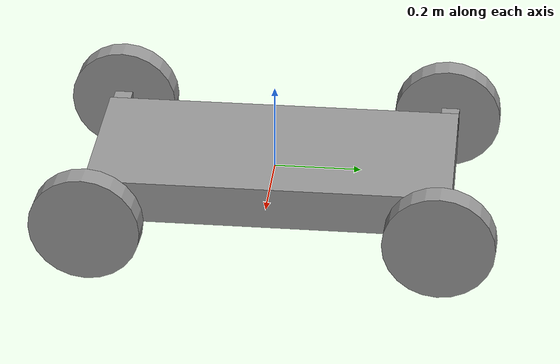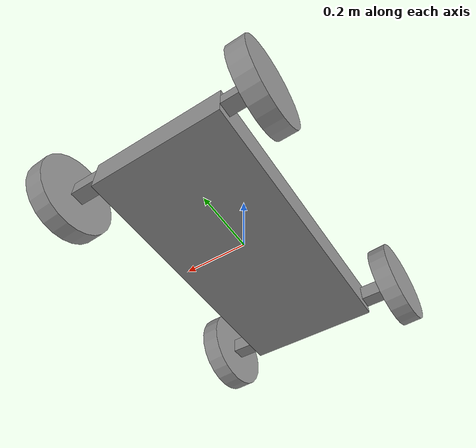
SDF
<?xml version='1.0'?>
<sdf version='1.6'>
  <model name='little_car_0'>
    <link name='link_0'>
      <pose frame=''>-0.001099 0.000791 0.00089 0 -0 0</pose>
      <inertial>
        <mass>0.0325049</mass>
        <inertia>
          <ixx>0.00188518</ixx>
          <ixy>0</ixy>
          <ixz>0</ixz>
          <iyy>0.000459472</iyy>
          <iyz>0</iyz>
          <izz>0.00229248</izz>
        </inertia>
        <pose frame=''>0 0 0 0 -0 0</pose>
      </inertial>
      <self_collide>0</self_collide>
      <kinematic>0</kinematic>
      <visual name='visual'>
        <pose frame=''>0 0 0 0 -0 0</pose>
        <geometry>
          <box>
            <size>0.399994 0.828452 0.098134</size>
          </box>
        </geometry>
        <material>
          <lighting>1</lighting>
          <script>
            <uri>file://media/materials/scripts/gazebo.material</uri>
            <name>Gazebo/Grey</name>
          </script>
          <shader type='pixel'/>
          <ambient>0.3 0.3 0.3 1</ambient>
          <diffuse>0.7 0.7 0.7 1</diffuse>
          <specular>0.01 0.01 0.01 1</specular>
          <emissive>0 0 0 1</emissive>
        </material>
        <transparency>0</transparency>
        <cast_shadows>1</cast_shadows>
      </visual>
      <collision name='collision'>
        <laser_retro>0</laser_retro>
        <max_contacts>10</max_contacts>
        <pose frame=''>0 0 0 0 -0 0</pose>
        <geometry>
          <box>
            <size>0.399994 0.828452 0.098134</size>
          </box>
        </geometry>
        <surface>
          <friction>
            <ode>
              <mu>1</mu>
              <mu2>1</mu2>
              <fdir1>0 0 0</fdir1>
              <slip1>0</slip1>
              <slip2>0</slip2>
            </ode>
            <torsional>
              <coefficient>1</coefficient>
              <patch_radius>0</patch_radius>
              <surface_radius>0</surface_radius>
              <use_patch_radius>1</use_patch_radius>
              <ode>
                <slip>0</slip>
              </ode>
            </torsional>
          </friction>
          <bounce>
            <restitution_coefficient>0</restitution_coefficient>
            <threshold>1e+06</threshold>
          </bounce>
          <contact>
            <collide_without_contact>0</collide_without_contact>
            <collide_without_contact_bitmask>1</collide_without_contact_bitmask>
            <collide_bitmask>1</collide_bitmask>
            <ode>
              <soft_cfm>0</soft_cfm>
              <soft_erp>0.2</soft_erp>
              <kp>1e+13</kp>
              <kd>1</kd>
              <max_vel>0.01</max_vel>
              <min_depth>0</min_depth>
            </ode>
            <bullet>
              <split_impulse>1</split_impulse>
              <split_impulse_penetration_threshold>-0.01</split_impulse_penetration_threshold>
              <soft_cfm>0</soft_cfm>
              <soft_erp>0.2</soft_erp>
              <kp>1e+13</kp>
              <kd>1</kd>
            </bullet>
          </contact>
        </surface>
      </collision>
    </link>
    <link name='link_0_clone'>
      <pose frame=''>-0.240125 0.393915 0.00089 0 -0 0</pose>
      <inertial>
        <mass>0.000135621</mass>
        <inertia>
          <ixx>3.93307e-08</ixx>
          <ixy>0</ixy>
          <ixz>0</ixz>
          <iyy>8.80606e-08</iyy>
          <iyz>0</iyz>
          <izz>8.89918e-08</izz>
        </inertia>
        <pose frame=''>0 0 0 0 -0 0</pose>
      </inertial>
      <self_collide>0</self_collide>
      <kinematic>0</kinematic>
      <visual name='visual'>
        <pose frame=''>0 0 0 0 -0 0</pose>
        <geometry>
          <box>
            <size>0.078057 0.042205 0.041217</size>
          </box>
        </geometry>
        <material>
          <lighting>1</lighting>
          <script>
            <uri>file://media/materials/scripts/gazebo.material</uri>
            <name>Gazebo/Grey</name>
          </script>
          <shader type='pixel'/>
          <ambient>0.3 0.3 0.3 1</ambient>
          <diffuse>0.7 0.7 0.7 1</diffuse>
          <specular>0.01 0.01 0.01 1</specular>
          <emissive>0 0 0 1</emissive>
        </material>
        <transparency>0</transparency>
        <cast_shadows>1</cast_shadows>
      </visual>
      <collision name='collision'>
        <laser_retro>0</laser_retro>
        <max_contacts>10</max_contacts>
        <pose frame=''>0 0 0 0 -0 0</pose>
        <geometry>
          <box>
            <size>0.078057 0.042205 0.041217</size>
          </box>
        </geometry>
        <surface>
          <friction>
            <ode>
              <mu>1</mu>
              <mu2>1</mu2>
              <fdir1>0 0 0</fdir1>
              <slip1>0</slip1>
              <slip2>0</slip2>
            </ode>
            <torsional>
              <coefficient>1</coefficient>
              <patch_radius>0</patch_radius>
              <surface_radius>0</surface_radius>
              <use_patch_radius>1</use_patch_radius>
              <ode>
                <slip>0</slip>
              </ode>
            </torsional>
          </friction>
          <bounce>
            <restitution_coefficient>0</restitution_coefficient>
            <threshold>1e+06</threshold>
          </bounce>
          <contact>
            <collide_without_contact>0</collide_without_contact>
            <collide_without_contact_bitmask>1</collide_without_contact_bitmask>
            <collide_bitmask>1</collide_bitmask>
            <ode>
              <soft_cfm>0</soft_cfm>
              <soft_erp>0.2</soft_erp>
              <kp>1e+13</kp>
              <kd>1</kd>
              <max_vel>0.01</max_vel>
              <min_depth>0</min_depth>
            </ode>
            <bullet>
              <split_impulse>1</split_impulse>
              <split_impulse_penetration_threshold>-0.01</split_impulse_penetration_threshold>
              <soft_cfm>0</soft_cfm>
              <soft_erp>0.2</soft_erp>
              <kp>1e+13</kp>
              <kd>1</kd>
            </bullet>
          </contact>
        </surface>
      </collision>
    </link>
    <link name='link_0_clone_clone_0'>
      <pose frame=''>-0.240124 -0.392333 0.00089 0 -0 0</pose>
      <inertial>
        <mass>0.000158882</mass>
        <inertia>
          <ixx>5.44496e-08</ixx>
          <ixy>0</ixy>
          <ixz>0</ixz>
          <iyy>1.11536e-07</iyy>
          <iyz>0</iyz>
          <izz>1.04255e-07</izz>
        </inertia>
        <pose frame=''>0 0 0 0 -0 0</pose>
      </inertial>
      <self_collide>0</self_collide>
      <kinematic>0</kinematic>
      <visual name='visual'>
        <pose frame=''>0 0 0 0 -0 0</pose>
        <geometry>
          <box>
            <size>0.078057 0.042205 0.048282</size>
          </box>
        </geometry>
        <material>
          <lighting>1</lighting>
          <script>
            <uri>file://media/materials/scripts/gazebo.material</uri>
            <name>Gazebo/Grey</name>
          </script>
          <shader type='pixel'/>
          <ambient>0.3 0.3 0.3 1</ambient>
          <diffuse>0.7 0.7 0.7 1</diffuse>
          <specular>0.01 0.01 0.01 1</specular>
          <emissive>0 0 0 1</emissive>
        </material>
        <transparency>0</transparency>
        <cast_shadows>1</cast_shadows>
      </visual>
      <collision name='collision'>
        <laser_retro>0</laser_retro>
        <max_contacts>10</max_contacts>
        <pose frame=''>0 0 0 0 -0 0</pose>
        <geometry>
          <box>
            <size>0.078057 0.042205 0.048282</size>
          </box>
        </geometry>
        <surface>
          <friction>
            <ode>
              <mu>1</mu>
              <mu2>1</mu2>
              <fdir1>0 0 0</fdir1>
              <slip1>0</slip1>
              <slip2>0</slip2>
            </ode>
            <torsional>
              <coefficient>1</coefficient>
              <patch_radius>0</patch_radius>
              <surface_radius>0</surface_radius>
              <use_patch_radius>1</use_patch_radius>
              <ode>
                <slip>0</slip>
              </ode>
            </torsional>
          </friction>
          <bounce>
            <restitution_coefficient>0</restitution_coefficient>
            <threshold>1e+06</threshold>
          </bounce>
          <contact>
            <collide_without_contact>0</collide_without_contact>
            <collide_without_contact_bitmask>1</collide_without_contact_bitmask>
            <collide_bitmask>1</collide_bitmask>
            <ode>
              <soft_cfm>0</soft_cfm>
              <soft_erp>0.2</soft_erp>
              <kp>1e+13</kp>
              <kd>1</kd>
              <max_vel>0.01</max_vel>
              <min_depth>0</min_depth>
            </ode>
            <bullet>
              <split_impulse>1</split_impulse>
              <split_impulse_penetration_threshold>-0.01</split_impulse_penetration_threshold>
              <soft_cfm>0</soft_cfm>
              <soft_erp>0.2</soft_erp>
              <kp>1e+13</kp>
              <kd>1</kd>
            </bullet>
          </contact>
        </surface>
      </collision>
    </link>
    <link name='link_0_clone_clone_0_clone'>
      <pose frame=''>0.237926 0.393914 0.00089 0 -0 0</pose>
      <inertial>
        <mass>0.000158882</mass>
        <inertia>
          <ixx>5.44496e-08</ixx>
          <ixy>0</ixy>
          <ixz>0</ixz>
          <iyy>1.11536e-07</iyy>
          <iyz>0</iyz>
          <izz>1.04255e-07</izz>
        </inertia>
        <pose frame=''>0 0 0 0 -0 0</pose>
      </inertial>
      <self_collide>0</self_collide>
      <kinematic>0</kinematic>
      <visual name='visual'>
        <pose frame=''>0 0 0 0 -0 0</pose>
        <geometry>
          <box>
            <size>0.078057 0.042205 0.048282</size>
          </box>
        </geometry>
        <material>
          <lighting>1</lighting>
          <script>
            <uri>file://media/materials/scripts/gazebo.material</uri>
            <name>Gazebo/Grey</name>
          </script>
          <shader type='pixel'/>
          <ambient>0.3 0.3 0.3 1</ambient>
          <diffuse>0.7 0.7 0.7 1</diffuse>
          <specular>0.01 0.01 0.01 1</specular>
          <emissive>0 0 0 1</emissive>
        </material>
        <transparency>0</transparency>
        <cast_shadows>1</cast_shadows>
      </visual>
      <collision name='collision'>
        <laser_retro>0</laser_retro>
        <max_contacts>10</max_contacts>
        <pose frame=''>0 0 0 0 -0 0</pose>
        <geometry>
          <box>
            <size>0.078057 0.042205 0.048282</size>
          </box>
        </geometry>
        <surface>
          <friction>
            <ode>
              <mu>1</mu>
              <mu2>1</mu2>
              <fdir1>0 0 0</fdir1>
              <slip1>0</slip1>
              <slip2>0</slip2>
            </ode>
            <torsional>
              <coefficient>1</coefficient>
              <patch_radius>0</patch_radius>
              <surface_radius>0</surface_radius>
              <use_patch_radius>1</use_patch_radius>
              <ode>
                <slip>0</slip>
              </ode>
            </torsional>
          </friction>
          <bounce>
            <restitution_coefficient>0</restitution_coefficient>
            <threshold>1e+06</threshold>
          </bounce>
          <contact>
            <collide_without_contact>0</collide_without_contact>
            <collide_without_contact_bitmask>1</collide_without_contact_bitmask>
            <collide_bitmask>1</collide_bitmask>
            <ode>
              <soft_cfm>0</soft_cfm>
              <soft_erp>0.2</soft_erp>
              <kp>1e+13</kp>
              <kd>1</kd>
              <max_vel>0.01</max_vel>
              <min_depth>0</min_depth>
            </ode>
            <bullet>
              <split_impulse>1</split_impulse>
              <split_impulse_penetration_threshold>-0.01</split_impulse_penetration_threshold>
              <soft_cfm>0</soft_cfm>
              <soft_erp>0.2</soft_erp>
              <kp>1e+13</kp>
              <kd>1</kd>
            </bullet>
          </contact>
        </surface>
      </collision>
    </link>
    <link name='link_0_clone_clone_0_clone_0'>
      <pose frame=''>0.237926 -0.392333 0.00089 0 -0 0</pose>
      <inertial>
        <mass>0.00015888</mass>
        <inertia>
          <ixx>5e-08</ixx>
          <ixy>0</ixy>
          <ixz>0</ixz>
          <iyy>1.1e-07</iyy>
          <iyz>0</iyz>
          <izz>1e-07</izz>
        </inertia>
        <pose frame=''>0 0 0 0 -0 0</pose>
      </inertial>
      <self_collide>0</self_collide>
      <kinematic>0</kinematic>
      <gravity>1</gravity>
      <visual name='visual'>
        <pose frame=''>0 0 0 0 -0 0</pose>
        <geometry>
          <box>
            <size>0.078057 0.042205 0.048282</size>
          </box>
        </geometry>
        <material>
          <lighting>1</lighting>
          <script>
            <uri>file://media/materials/scripts/gazebo.material</uri>
            <name>Gazebo/Grey</name>
          </script>
          <shader type='pixel'>
            <normal_map>__default__</normal_map>
          </shader>
          <ambient>0.3 0.3 0.3 1</ambient>
          <diffuse>0.7 0.7 0.7 1</diffuse>
          <specular>0.01 0.01 0.01 1</specular>
          <emissive>0 0 0 1</emissive>
        </material>
        <transparency>0</transparency>
        <cast_shadows>1</cast_shadows>
      </visual>
      <collision name='collision'>
        <laser_retro>0</laser_retro>
        <max_contacts>10</max_contacts>
        <pose frame=''>0 0 0 0 -0 0</pose>
        <geometry>
          <box>
            <size>0.078057 0.042205 0.048282</size>
          </box>
        </geometry>
        <surface>
          <friction>
            <ode>
              <mu>1</mu>
              <mu2>1</mu2>
              <fdir1>0 0 0</fdir1>
              <slip1>0</slip1>
              <slip2>0</slip2>
            </ode>
            <torsional>
              <coefficient>1</coefficient>
              <patch_radius>0</patch_radius>
              <surface_radius>0</surface_radius>
              <use_patch_radius>1</use_patch_radius>
              <ode>
                <slip>0</slip>
              </ode>
            </torsional>
          </friction>
          <bounce>
            <restitution_coefficient>0</restitution_coefficient>
            <threshold>1e+06</threshold>
          </bounce>
          <contact>
            <collide_without_contact>0</collide_without_contact>
            <collide_without_contact_bitmask>1</collide_without_contact_bitmask>
            <collide_bitmask>1</collide_bitmask>
            <ode>
              <soft_cfm>0</soft_cfm>
              <soft_erp>0.2</soft_erp>
              <kp>1e+13</kp>
              <kd>1</kd>
              <max_vel>0.01</max_vel>
              <min_depth>0</min_depth>
            </ode>
            <bullet>
              <split_impulse>1</split_impulse>
              <split_impulse_penetration_threshold>-0.01</split_impulse_penetration_threshold>
              <soft_cfm>0</soft_cfm>
              <soft_erp>0.2</soft_erp>
              <kp>1e+13</kp>
              <kd>1</kd>
            </bullet>
          </contact>
        </surface>
      </collision>
    </link>
    <link name='link_2'>
      <pose frame=''>-0.305377 0.386787 -0.007176 0 -1.55504 0</pose>
      <inertial>
        <mass>0.00346759</mass>
        <inertia>
          <ixx>1.45757e-05</ixx>
          <ixy>0</ixy>
          <ixz>0</ixz>
          <iyy>1.45757e-05</iyy>
          <iyz>0</iyz>
          <izz>2.74145e-05</izz>
        </inertia>
        <pose frame=''>0 0 0 0 -0 0</pose>
      </inertial>
      <self_collide>0</self_collide>
      <kinematic>0</kinematic>
      <visual name='visual'>
        <pose frame=''>0 0 0 0 -0 0</pose>
        <geometry>
          <cylinder>
            <radius>0.125745</radius>
            <length>0.0548227</length>
          </cylinder>
        </geometry>
        <material>
          <lighting>1</lighting>
          <script>
            <uri>file://media/materials/scripts/gazebo.material</uri>
            <name>Gazebo/Grey</name>
          </script>
          <shader type='pixel'>
            <normal_map>__default__</normal_map>
          </shader>
          <ambient>0.3 0.3 0.3 1</ambient>
          <diffuse>0.7 0.7 0.7 1</diffuse>
          <specular>0.01 0.01 0.01 1</specular>
          <emissive>0 0 0 1</emissive>
        </material>
        <transparency>0</transparency>
        <cast_shadows>1</cast_shadows>
      </visual>
      <collision name='collision'>
        <laser_retro>0</laser_retro>
        <max_contacts>10</max_contacts>
        <pose frame=''>0 0 0 0 -0 0</pose>
        <geometry>
          <cylinder>
            <radius>0.125745</radius>
            <length>0.054823</length>
          </cylinder>
        </geometry>
        <surface>
          <friction>
            <ode>
              <mu>1</mu>
              <mu2>1</mu2>
              <fdir1>0 0 0</fdir1>
              <slip1>0</slip1>
              <slip2>0</slip2>
            </ode>
            <torsional>
              <coefficient>1</coefficient>
              <patch_radius>0</patch_radius>
              <surface_radius>0</surface_radius>
              <use_patch_radius>1</use_patch_radius>
              <ode>
                <slip>0</slip>
              </ode>
            </torsional>
          </friction>
          <bounce>
            <restitution_coefficient>0</restitution_coefficient>
            <threshold>1e+06</threshold>
          </bounce>
          <contact>
            <collide_without_contact>0</collide_without_contact>
            <collide_without_contact_bitmask>1</collide_without_contact_bitmask>
            <collide_bitmask>1</collide_bitmask>
            <ode>
              <soft_cfm>0</soft_cfm>
              <soft_erp>0.2</soft_erp>
              <kp>1e+13</kp>
              <kd>1</kd>
              <max_vel>0.01</max_vel>
              <min_depth>0</min_depth>
            </ode>
            <bullet>
              <split_impulse>1</split_impulse>
              <split_impulse_penetration_threshold>-0.01</split_impulse_penetration_threshold>
              <soft_cfm>0</soft_cfm>
              <soft_erp>0.2</soft_erp>
              <kp>1e+13</kp>
              <kd>1</kd>
            </bullet>
          </contact>
        </surface>
      </collision>
    </link>
    <link name='link_2_clone'>
      <pose frame=''>-0.306929 -0.392398 0.000865 -0.04 -1.55504 0</pose>
      <inertial>
        <mass>0.00346759</mass>
        <inertia>
          <ixx>1.458e-05</ixx>
          <ixy>0</ixy>
          <ixz>0</ixz>
          <iyy>1.458e-05</iyy>
          <iyz>0</iyz>
          <izz>2.741e-05</izz>
        </inertia>
        <pose frame=''>0 0 0 0 -0 0</pose>
      </inertial>
      <self_collide>0</self_collide>
      <kinematic>0</kinematic>
      <gravity>1</gravity>
      <visual name='visual'>
        <pose frame=''>0 0 0 0 -0 0</pose>
        <geometry>
          <cylinder>
            <radius>0.125745</radius>
            <length>0.0548227</length>
          </cylinder>
        </geometry>
        <material>
          <lighting>1</lighting>
          <script>
            <uri>file://media/materials/scripts/gazebo.material</uri>
            <name>Gazebo/Grey</name>
          </script>
          <shader type='pixel'>
            <normal_map>__default__</normal_map>
          </shader>
          <ambient>0.3 0.3 0.3 1</ambient>
          <diffuse>0.7 0.7 0.7 1</diffuse>
          <specular>0.01 0.01 0.01 1</specular>
          <emissive>0 0 0 1</emissive>
        </material>
        <transparency>0</transparency>
        <cast_shadows>1</cast_shadows>
      </visual>
      <collision name='collision'>
        <laser_retro>0</laser_retro>
        <max_contacts>10</max_contacts>
        <pose frame=''>0 0 0 0 -0 0</pose>
        <geometry>
          <cylinder>
            <radius>0.125745</radius>
            <length>0.054823</length>
          </cylinder>
        </geometry>
        <surface>
          <friction>
            <ode>
              <mu>1</mu>
              <mu2>1</mu2>
              <fdir1>0 0 0</fdir1>
              <slip1>0</slip1>
              <slip2>0</slip2>
            </ode>
            <torsional>
              <coefficient>1</coefficient>
              <patch_radius>0</patch_radius>
              <surface_radius>0</surface_radius>
              <use_patch_radius>1</use_patch_radius>
              <ode>
                <slip>0</slip>
              </ode>
            </torsional>
          </friction>
          <bounce>
            <restitution_coefficient>0</restitution_coefficient>
            <threshold>1e+06</threshold>
          </bounce>
          <contact>
            <collide_without_contact>0</collide_without_contact>
            <collide_without_contact_bitmask>1</collide_without_contact_bitmask>
            <collide_bitmask>1</collide_bitmask>
            <ode>
              <soft_cfm>0</soft_cfm>
              <soft_erp>0.2</soft_erp>
              <kp>1e+13</kp>
              <kd>1</kd>
              <max_vel>0.01</max_vel>
              <min_depth>0</min_depth>
            </ode>
            <bullet>
              <split_impulse>1</split_impulse>
              <split_impulse_penetration_threshold>-0.01</split_impulse_penetration_threshold>
              <soft_cfm>0</soft_cfm>
              <soft_erp>0.2</soft_erp>
              <kp>1e+13</kp>
              <kd>1</kd>
            </bullet>
          </contact>
        </surface>
      </collision>
    </link>
    <link name='link_2_clone_clone'>
      <pose frame=''>0.306191 0.39412 0.000971 -0.04 -1.55504 0</pose>
      <inertial>
        <mass>0.00346759</mass>
        <inertia>
          <ixx>1.45757e-05</ixx>
          <ixy>0</ixy>
          <ixz>0</ixz>
          <iyy>1.45757e-05</iyy>
          <iyz>0</iyz>
          <izz>2.74145e-05</izz>
        </inertia>
        <pose frame=''>0 0 0 0 -0 0</pose>
      </inertial>
      <self_collide>0</self_collide>
      <kinematic>0</kinematic>
      <visual name='visual'>
        <pose frame=''>0 0 0 0 -0 0</pose>
        <geometry>
          <cylinder>
            <radius>0.125745</radius>
            <length>0.0548227</length>
          </cylinder>
        </geometry>
        <material>
          <lighting>1</lighting>
          <script>
            <uri>file://media/materials/scripts/gazebo.material</uri>
            <name>Gazebo/Grey</name>
          </script>
          <shader type='pixel'>
            <normal_map>__default__</normal_map>
          </shader>
          <ambient>0.3 0.3 0.3 1</ambient>
          <diffuse>0.7 0.7 0.7 1</diffuse>
          <specular>0.01 0.01 0.01 1</specular>
          <emissive>0 0 0 1</emissive>
        </material>
        <transparency>0</transparency>
        <cast_shadows>1</cast_shadows>
      </visual>
      <collision name='collision'>
        <laser_retro>0</laser_retro>
        <max_contacts>10</max_contacts>
        <pose frame=''>0 0 0 0 -0 0</pose>
        <geometry>
          <cylinder>
            <radius>0.125745</radius>
            <length>0.054823</length>
          </cylinder>
        </geometry>
        <surface>
          <friction>
            <ode>
              <mu>1</mu>
              <mu2>1</mu2>
              <fdir1>0 0 0</fdir1>
              <slip1>0</slip1>
              <slip2>0</slip2>
            </ode>
            <torsional>
              <coefficient>1</coefficient>
              <patch_radius>0</patch_radius>
              <surface_radius>0</surface_radius>
              <use_patch_radius>1</use_patch_radius>
              <ode>
                <slip>0</slip>
              </ode>
            </torsional>
          </friction>
          <bounce>
            <restitution_coefficient>0</restitution_coefficient>
            <threshold>1e+06</threshold>
          </bounce>
          <contact>
            <collide_without_contact>0</collide_without_contact>
            <collide_without_contact_bitmask>1</collide_without_contact_bitmask>
            <collide_bitmask>1</collide_bitmask>
            <ode>
              <soft_cfm>0</soft_cfm>
              <soft_erp>0.2</soft_erp>
              <kp>1e+13</kp>
              <kd>1</kd>
              <max_vel>0.01</max_vel>
              <min_depth>0</min_depth>
            </ode>
            <bullet>
              <split_impulse>1</split_impulse>
              <split_impulse_penetration_threshold>-0.01</split_impulse_penetration_threshold>
              <soft_cfm>0</soft_cfm>
              <soft_erp>0.2</soft_erp>
              <kp>1e+13</kp>
              <kd>1</kd>
            </bullet>
          </contact>
        </surface>
      </collision>
    </link>
    <link name='link_2_clone_clone_0'>
      <pose frame=''>0.303034 -0.392 0.001021 -0.04 -1.55504 0</pose>
      <inertial>
        <mass>0.00346759</mass>
        <inertia>
          <ixx>1.45757e-05</ixx>
          <ixy>0</ixy>
          <ixz>0</ixz>
          <iyy>1.45757e-05</iyy>
          <iyz>0</iyz>
          <izz>2.74145e-05</izz>
        </inertia>
        <pose frame=''>0 0 0 0 -0 0</pose>
      </inertial>
      <self_collide>0</self_collide>
      <kinematic>0</kinematic>
      <visual name='visual'>
        <pose frame=''>0 0 0 0 -0 0</pose>
        <geometry>
          <cylinder>
            <radius>0.125745</radius>
            <length>0.0548227</length>
          </cylinder>
        </geometry>
        <material>
          <lighting>1</lighting>
          <script>
            <uri>file://media/materials/scripts/gazebo.material</uri>
            <name>Gazebo/Grey</name>
          </script>
          <shader type='pixel'>
            <normal_map>__default__</normal_map>
          </shader>
          <ambient>0.3 0.3 0.3 1</ambient>
          <diffuse>0.7 0.7 0.7 1</diffuse>
          <specular>0.01 0.01 0.01 1</specular>
          <emissive>0 0 0 1</emissive>
        </material>
        <transparency>0</transparency>
        <cast_shadows>1</cast_shadows>
      </visual>
      <collision name='collision'>
        <laser_retro>0</laser_retro>
        <max_contacts>10</max_contacts>
        <pose frame=''>0 0 0 0 -0 0</pose>
        <geometry>
          <cylinder>
            <radius>0.125745</radius>
            <length>0.054823</length>
          </cylinder>
        </geometry>
        <surface>
          <friction>
            <ode>
              <mu>1</mu>
              <mu2>1</mu2>
              <fdir1>0 0 0</fdir1>
              <slip1>0</slip1>
              <slip2>0</slip2>
            </ode>
            <torsional>
              <coefficient>1</coefficient>
              <patch_radius>0</patch_radius>
              <surface_radius>0</surface_radius>
              <use_patch_radius>1</use_patch_radius>
              <ode>
                <slip>0</slip>
              </ode>
            </torsional>
          </friction>
          <bounce>
            <restitution_coefficient>0</restitution_coefficient>
            <threshold>1e+06</threshold>
          </bounce>
          <contact>
            <collide_without_contact>0</collide_without_contact>
            <collide_without_contact_bitmask>1</collide_without_contact_bitmask>
            <collide_bitmask>1</collide_bitmask>
            <ode>
              <soft_cfm>0</soft_cfm>
              <soft_erp>0.2</soft_erp>
              <kp>1e+13</kp>
              <kd>1</kd>
              <max_vel>0.01</max_vel>
              <min_depth>0</min_depth>
            </ode>
            <bullet>
              <split_impulse>1</split_impulse>
              <split_impulse_penetration_threshold>-0.01</split_impulse_penetration_threshold>
              <soft_cfm>0</soft_cfm>
              <soft_erp>0.2</soft_erp>
              <kp>1e+13</kp>
              <kd>1</kd>
            </bullet>
          </contact>
        </surface>
      </collision>
    </link>
    <joint name='link_0_JOINT_0' type='fixed'>
      <parent>link_0</parent>
      <child>link_0_clone</child>
      <pose frame=''>0 0 0 0 -0 0</pose>
      <physics>
        <ode>
          <limit>
            <cfm>0</cfm>
            <erp>0.2</erp>
          </limit>
          <suspension>
            <cfm>0</cfm>
            <erp>0.2</erp>
          </suspension>
        </ode>
      </physics>
    </joint>
    <joint name='link_0_JOINT_1' type='fixed'>
      <parent>link_0</parent>
      <child>link_0_clone_clone_0_clone</child>
      <pose frame=''>0 0 0 0 -0 0</pose>
      <physics>
        <ode>
          <limit>
            <cfm>0</cfm>
            <erp>0.2</erp>
          </limit>
          <suspension>
            <cfm>0</cfm>
            <erp>0.2</erp>
          </suspension>
        </ode>
      </physics>
    </joint>
    <joint name='link_0_JOINT_2' type='fixed'>
      <parent>link_0</parent>
      <child>link_0_clone_clone_0_clone_0</child>
      <pose frame=''>0 0 0 0 -0 0</pose>
      <physics>
        <ode>
          <limit>
            <cfm>0</cfm>
            <erp>0.2</erp>
          </limit>
          <suspension>
            <cfm>0</cfm>
            <erp>0.2</erp>
          </suspension>
        </ode>
      </physics>
    </joint>
    <joint name='link_0_JOINT_3' type='fixed'>
      <parent>link_0</parent>
      <child>link_0_clone_clone_0</child>
      <pose frame=''>0 0 0 0 -0 0</pose>
      <physics>
        <ode>
          <limit>
            <cfm>0</cfm>
            <erp>0.2</erp>
          </limit>
          <suspension>
            <cfm>0</cfm>
            <erp>0.2</erp>
          </suspension>
        </ode>
      </physics>
    </joint>
    <joint name='link_0_clone_JOINT_5' type='revolute'>
      <parent>link_0_clone</parent>
      <child>link_2</child>
      <pose frame=''>0 0 0 0 -0 0</pose>
      <axis>
        <xyz>1 0 0</xyz>
        <use_parent_model_frame>0</use_parent_model_frame>
        <limit>
          <lower>-1.79769e+308</lower>
          <upper>1.79769e+308</upper>
          <effort>-1</effort>
          <velocity>-1</velocity>
        </limit>
        <dynamics>
          <spring_reference>0</spring_reference>
          <spring_stiffness>0</spring_stiffness>
          <damping>0</damping>
          <friction>0</friction>
        </dynamics>
      </axis>
      <physics>
        <ode>
          <limit>
            <cfm>0</cfm>
            <erp>0.2</erp>
          </limit>
          <suspension>
            <cfm>0</cfm>
            <erp>0.2</erp>
          </suspension>
        </ode>
      </physics>
    </joint>
    <joint name='link_0_clone_clone_0_JOINT_4' type='revolute'>
      <parent>link_0_clone_clone_0</parent>
      <child>link_2_clone</child>
      <pose frame=''>0 0 0 0 -0 0</pose>
      <axis>
        <xyz>1 0 0</xyz>
        <use_parent_model_frame>0</use_parent_model_frame>
        <limit>
          <lower>-1.79769e+308</lower>
          <upper>1.79769e+308</upper>
          <effort>-1</effort>
          <velocity>-1</velocity>
        </limit>
        <dynamics>
          <spring_reference>0</spring_reference>
          <spring_stiffness>0</spring_stiffness>
          <damping>0</damping>
          <friction>0</friction>
        </dynamics>
      </axis>
      <physics>
        <ode>
          <limit>
            <cfm>0</cfm>
            <erp>0.2</erp>
          </limit>
          <suspension>
            <cfm>0</cfm>
            <erp>0.2</erp>
          </suspension>
        </ode>
      </physics>
    </joint>
    <joint name='link_0_clone_clone_0_clone_0_JOINT_6' type='revolute'>
      <parent>link_0_clone_clone_0_clone_0</parent>
      <child>link_2_clone_clone_0</child>
      <pose frame=''>0 0 0 0 -0 0</pose>
      <axis>
        <xyz>1 0 0</xyz>
        <use_parent_model_frame>0</use_parent_model_frame>
        <limit>
          <lower>-1.79769e+308</lower>
          <upper>1.79769e+308</upper>
          <effort>-1</effort>
          <velocity>-1</velocity>
        </limit>
        <dynamics>
          <spring_reference>0</spring_reference>
          <spring_stiffness>0</spring_stiffness>
          <damping>0</damping>
          <friction>0</friction>
        </dynamics>
      </axis>
      <physics>
        <ode>
          <limit>
            <cfm>0</cfm>
            <erp>0.2</erp>
          </limit>
          <suspension>
            <cfm>0</cfm>
            <erp>0.2</erp>
          </suspension>
        </ode>
      </physics>
    </joint>
    <joint name='link_0_clone_clone_0_clone_JOINT_7' type='revolute'>
      <parent>link_0_clone_clone_0_clone</parent>
      <child>link_2_clone_clone</child>
      <pose frame=''>0 0 0 0 -0 0</pose>
      <axis>
        <xyz>1 0 0</xyz>
        <use_parent_model_frame>0</use_parent_model_frame>
        <limit>
          <lower>-1.79769e+308</lower>
          <upper>1.79769e+308</upper>
          <effort>-1</effort>
          <velocity>-1</velocity>
        </limit>
        <dynamics>
          <spring_reference>0</spring_reference>
          <spring_stiffness>0</spring_stiffness>
          <damping>0</damping>
          <friction>0</friction>
        </dynamics>
      </axis>
      <physics>
        <ode>
          <limit>
            <cfm>0</cfm>
            <erp>0.2</erp>
          </limit>
          <suspension>
            <cfm>0</cfm>
            <erp>0.2</erp>
          </suspension>
        </ode>
      </physics>
    </joint>
    <static>0</static>
    <allow_auto_disable>1</allow_auto_disable>
  </model>
</sdf>
